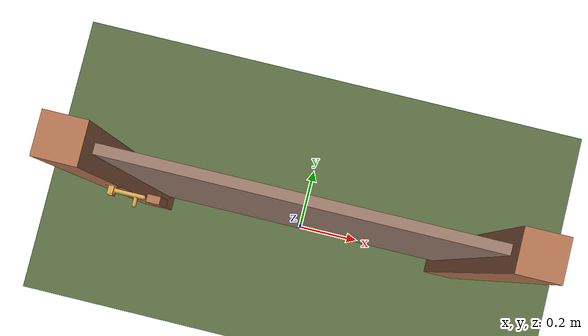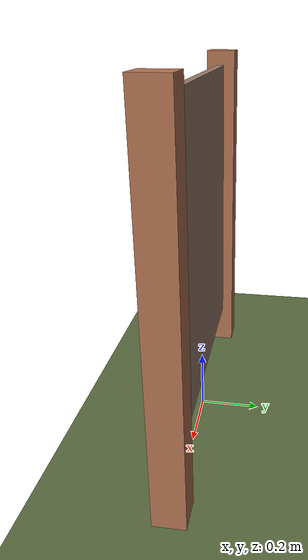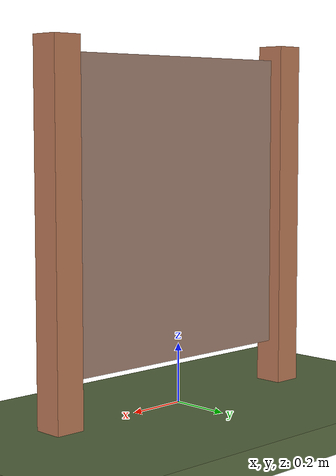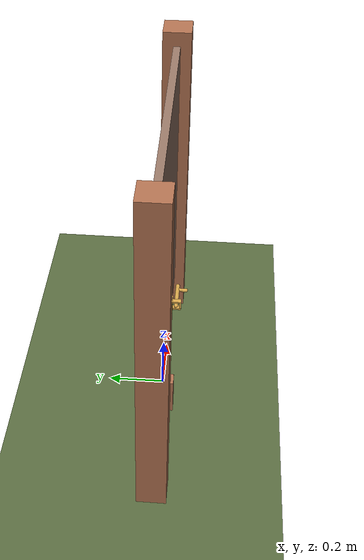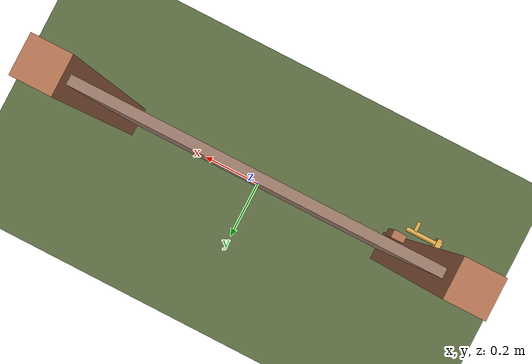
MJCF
<?xml version="1.0" ?>
<mujoco model="db0253_gate_swing_minimal">
  <compiler angle="radian" meshdir="../../hardware" texturedir="../../textures" autolimits="true" inertiafromgeom="false"/>
  <option timestep="0.002" integrator="implicitfast" cone="elliptic" impratio="10" noslip_iterations="3">
    <flag multiccd="enable"/>
  </option>
  <size memory="16M"/>
  <default>
    <geom condim="4" solref="0.005 1" solimp="0.95 0.99 0.001"/>
    <joint solreflimit="0.005 1" solimplimit="0.95 0.99 0.001"/>
    <tendon solreflimit="0.005 1"/>
    <equality solref="0.002 1"/>
  </default>
  <visual>
    <headlight ambient="0.4 0.4 0.4" diffuse="0.7 0.7 0.7" specular="0.2 0.2 0.2"/>
    <quality shadowsize="4096"/>
    <map znear="0.01" zfar="60"/>
  </visual>
  <asset>
    <material name="mat_floor" rgba="0.35 0.42 0.25 1" specular="0.2" shininess="0.15" reflectance="0"/>
    <material name="mat_wall" rgba="0.78 0.76 0.7 1" specular="0.2" shininess="0.1" reflectance="0"/>
    <material name="mat_leaf" rgba="0.6 0.475 0.41 1" specular="0.2" shininess="0.4" reflectance="0"/>
    <material name="mat_leaf_brace" rgba="0.54 0.427 0.369 1" specular="0.2" shininess="0.2" reflectance="0"/>
    <material name="mat_hinge" rgba="0.45 0.3 0.22 1" specular="0.5" shininess="0.1" reflectance="0.2"/>
    <material name="mat_op_brass" rgba="0.85 0.66 0.3 1" specular="0.8" shininess="0.75" reflectance="0.4"/>
    <material name="mat_frame" rgba="0.7 0.45 0.32 1" specular="0.2" shininess="0.4" reflectance="0"/>
    <material name="mat_bumper_stop" rgba="0.08 0.08 0.08 1" specular="0.2" shininess="0.1" reflectance="0"/>
    <material name="mat_stop_base" rgba="0.9 0.9 0.92 1" specular="0.8" shininess="0.9" reflectance="0.4"/>
    <material name="mat_fence" rgba="0.7 0.45 0.32 1" specular="0.2" shininess="0.4" reflectance="0"/>
    <texture name="skybox" type="skybox" builtin="gradient" rgb1="0.6 0.7 0.85" rgb2="0.9 0.92 0.95" width="256" height="256"/>
  </asset>
  <worldbody>
    <light name="sun" pos="1.5 -2.5 4" dir="-0.3 0.5 -0.8" directional="true" diffuse="0.8 0.8 0.8" specular="0.3 0.3 0.3" castshadow="true"/>
    <light name="fill" pos="-1.5 2.5 3" dir="0.3 -0.5 -0.7" directional="true" diffuse="0.35 0.35 0.4" castshadow="false"/>
    <camera name="robot_view" pos="0 -1.875 1.035" xyaxes="1 0 0 0 0.26963 0.962964" fovy="52"/>
    <camera name="far_view" pos="0 1.875 1.035" xyaxes="-1 0 0 0 -0.26963 0.962964" fovy="52"/>
    <camera name="iso" pos="-1.425 -1.575 1.335" xyaxes="0.741536 -0.670913 0 0.242917 0.268487 0.932151" fovy="46"/>
    <camera name="detail_handle" pos="-0.232 -0.896 1.08" xyaxes="0.97561 0.219512 0 -0.070934 0.315262 0.94635" fovy="38"/>
    <geom name="floor" type="box" size="6 6 0.05" pos="0 0 -0.05" material="mat_floor" group="0" contype="1" conaffinity="1" friction="0.8 0.005 0.0001" density="2400"/>
    <geom name="leaf_slide_bolt_keeper_leg_n" type="box" size="0.007 0.0025 0.013" pos="-0.476 -0.063 0.8115" quat="0 0 -0.707107 0.707107" material="mat_op_brass" group="0" contype="1" conaffinity="1" friction="0.6 0.005 0.0001" density="7800"/>
    <geom name="leaf_slide_bolt_keeper_leg_p" type="box" size="0.007 0.0025 0.013" pos="-0.476 -0.063 0.7885" quat="0 0 -0.707107 0.707107" material="mat_op_brass" group="0" contype="1" conaffinity="1" friction="0.6 0.005 0.0001" density="7800"/>
    <geom name="leaf_slide_bolt_keeper_bridge" type="box" size="0.007 0.014 0.0025" pos="-0.476 -0.0735 0.8" quat="0 0 -0.707107 0.707107" material="mat_op_brass" group="0" contype="1" conaffinity="1" friction="0.6 0.005 0.0001" density="7800"/>
    <geom name="leaf_slide_bolt_keeper_base" type="box" size="0.015 0.02 0.001" pos="-0.476 -0.051 0.8" quat="0 0 -0.707107 0.707107" material="mat_op_brass" group="1" contype="0" conaffinity="0" density="7800"/>
    <geom name="post_hinge" type="box" size="0.05 0.05 0.6" pos="0.506 0 0.6" material="mat_frame" group="0" contype="1" conaffinity="1" friction="0.6 0.005 0.0001" density="350"/>
    <geom name="post_latch" type="box" size="0.05 0.05 0.6" pos="-0.506 0 0.6" material="mat_frame" group="0" contype="1" conaffinity="1" friction="0.6 0.005 0.0001" density="350"/>
    <geom name="gate_stop" type="box" size="0.02 0.012 0.06" pos="-0.436 -0.0465 0.4" material="mat_frame" group="0" contype="1" conaffinity="1" friction="0.6 0.005 0.0001" density="350"/>
    <site name="approach_point" pos="0 -1.5 0" quat="1 0 0 0" size="0.05" rgba="0.2 0.9 0.2 0.5" group="4"/>
    <site name="goal_point" pos="0 1.5 0" quat="1 0 0 0" size="0.05" rgba="0.2 0.9 0.2 0.5" group="4"/>
    <site name="door_plane_center" pos="0 0 0.51" quat="1 0 0 0" size="0.02" rgba="0.2 0.9 0.2 0.5" group="4"/>
    <body name="leaf" pos="0.456 0 0">
      <inertial pos="-0.453 0 0.65" mass="8.683216" quat="-0.5 0.5 0.5 0.5" diaginertia="0.586569337 0.724053592 1.309718427"/>
      <joint name="leaf_hinge" type="hinge" axis="0 0 -1" pos="-0.003 0.05 0" limited="true" range="0 1.396263" damping="0.168492" frictionloss="1.706754" armature="0.02"/>
      <geom name="leaf_slab" type="box" size="0.45 0.0125 0.5" pos="-0.453 0 0.65" material="mat_leaf" group="0" contype="1" conaffinity="1" friction="0.35 0.005 0.0001" density="1"/>
      <site name="leaf_edge_mid" pos="-0.903 0 0.5" quat="1 0 0 0" size="0.02" rgba="0.2 0.9 0.2 0.5" group="4"/>
      <body name="leaf_slide_bolt" pos="-0.903 -0.062 0.8">
        <inertial pos="0.013204 -0.002426 0" mass="0.101671" quat="0.999278 0 0 -0.037986" diaginertia="0.000005295 0.000076302 0.000079893"/>
        <joint name="leaf_slide_bolt_slide" type="slide" axis="1 0 0" limited="true" range="0 0.045" damping="1" frictionloss="1" armature="0.1"/>
        <geom name="leaf_slide_bolt_rod" type="capsule" size="0.006 0.044" pos="0.009 0 0" quat="0.707107 0 -0.707107 0" material="mat_op_brass" group="0" contype="1" conaffinity="1" friction="0.6 0.005 0.0001" density="7850"/>
        <geom name="leaf_slide_bolt_knob" type="capsule" size="0.005 0.01" pos="0.035 -0.015 0" quat="0.707107 0.707107 0 0" material="mat_op_brass" group="0" contype="1" conaffinity="1" friction="0.6 0.005 0.0001" density="7850"/>
        <site name="leaf_grip_n" pos="0.035 -0.034 0" quat="1 0 0 0" size="0.012" rgba="0.2 0.9 0.2 0.5" group="4"/>
      </body>
    </body>
  </worldbody>
  <sensor>
    <jointpos name="leaf_hinge_pos" joint="leaf_hinge"/>
    <jointvel name="leaf_hinge_vel" joint="leaf_hinge"/>
    <jointpos name="leaf_slide_bolt_slide_pos" joint="leaf_slide_bolt_slide"/>
    <jointvel name="leaf_slide_bolt_slide_vel" joint="leaf_slide_bolt_slide"/>
  </sensor>
</mujoco>
